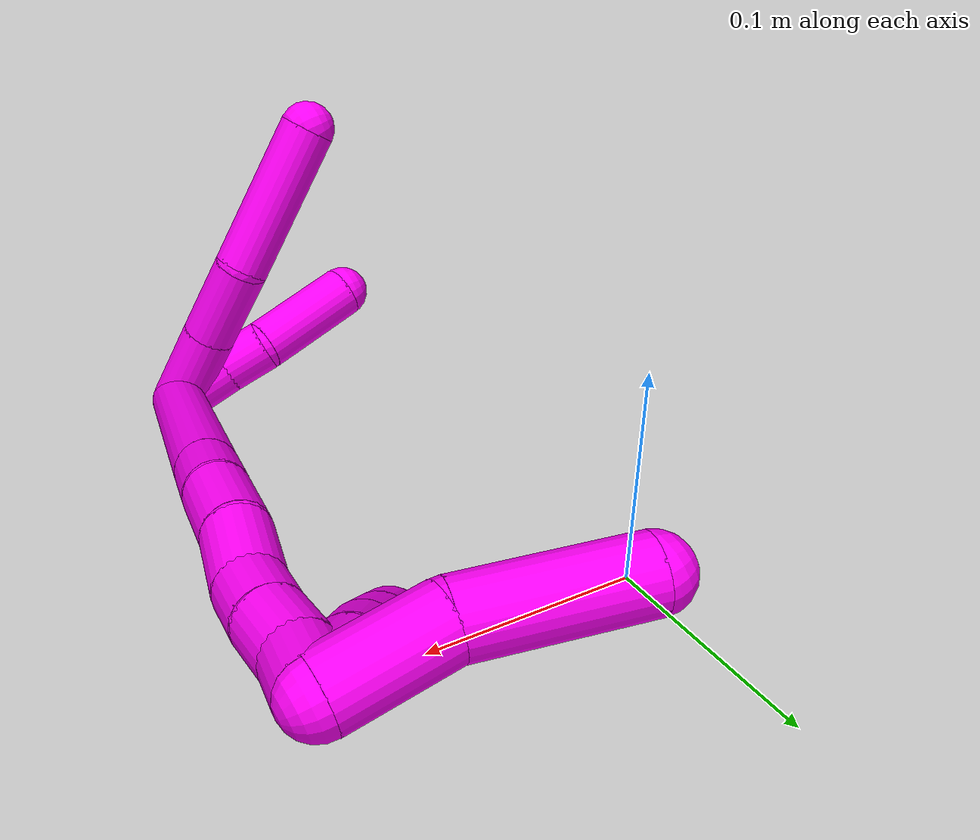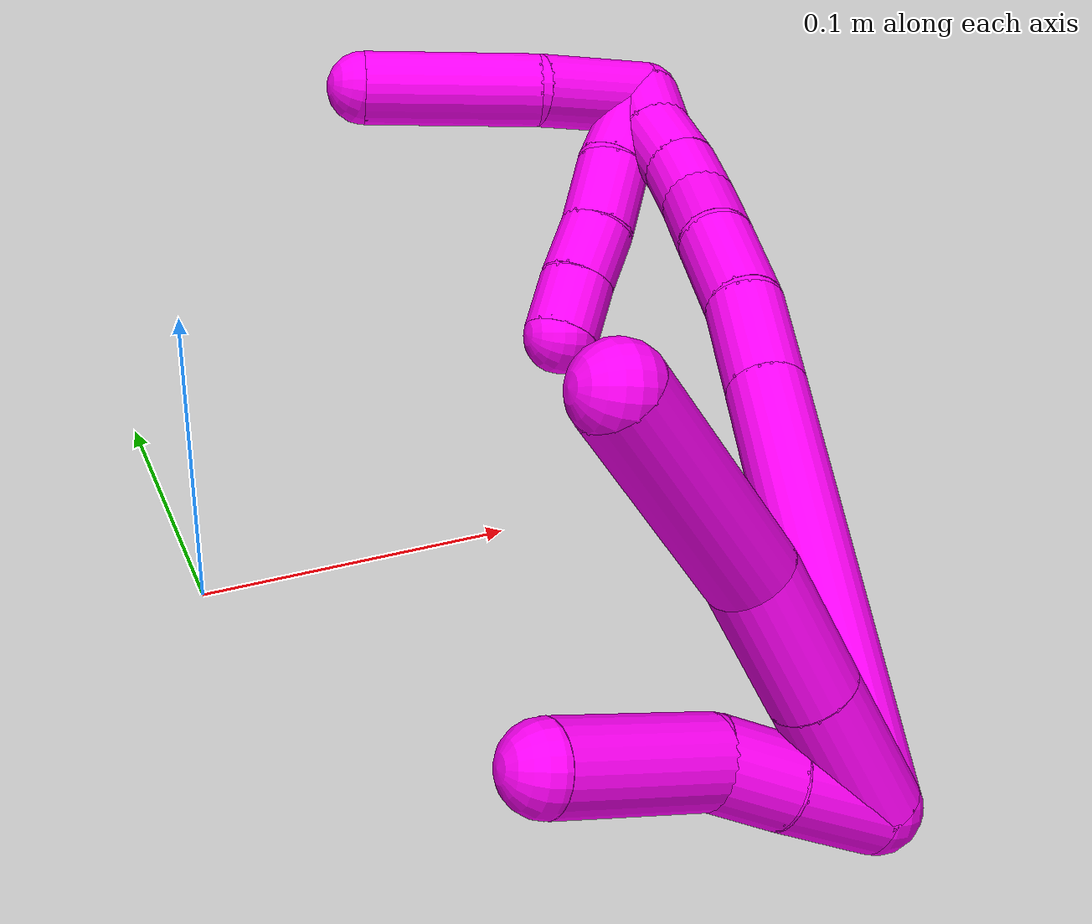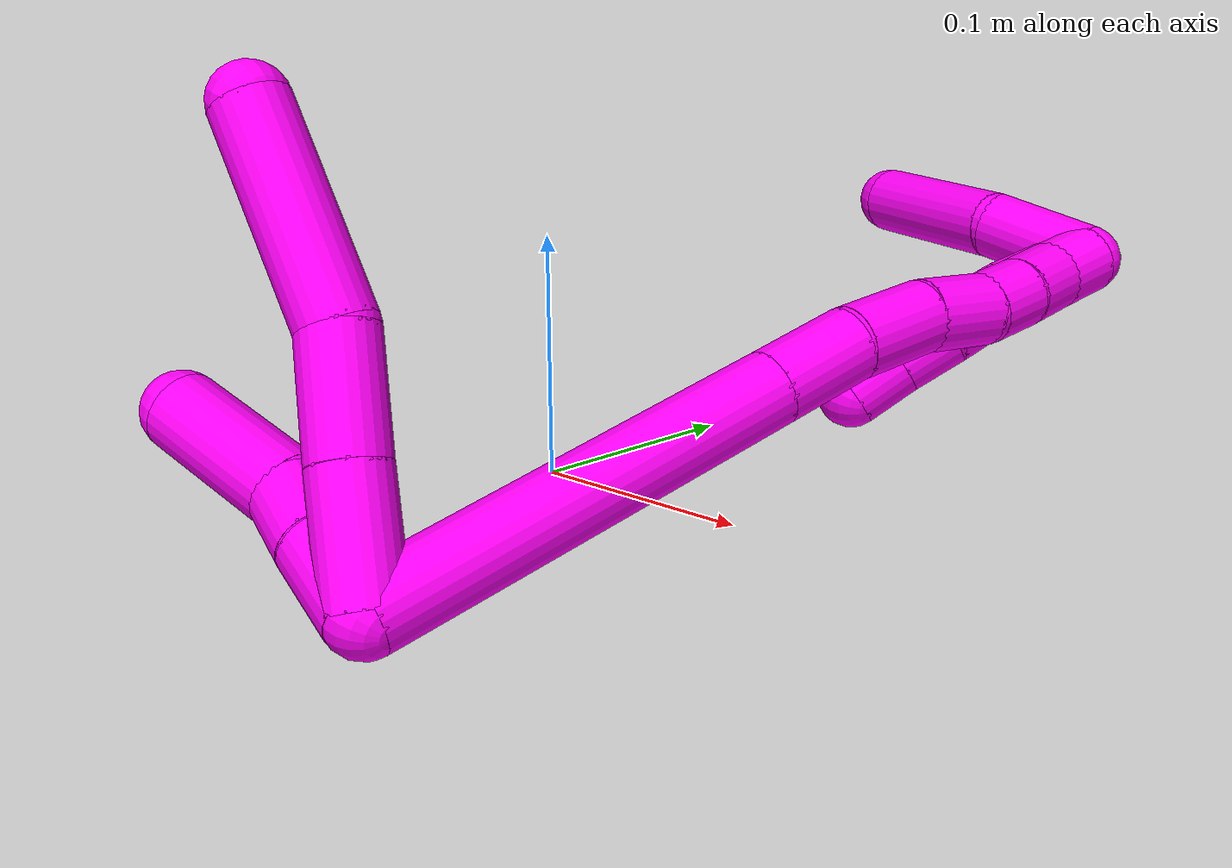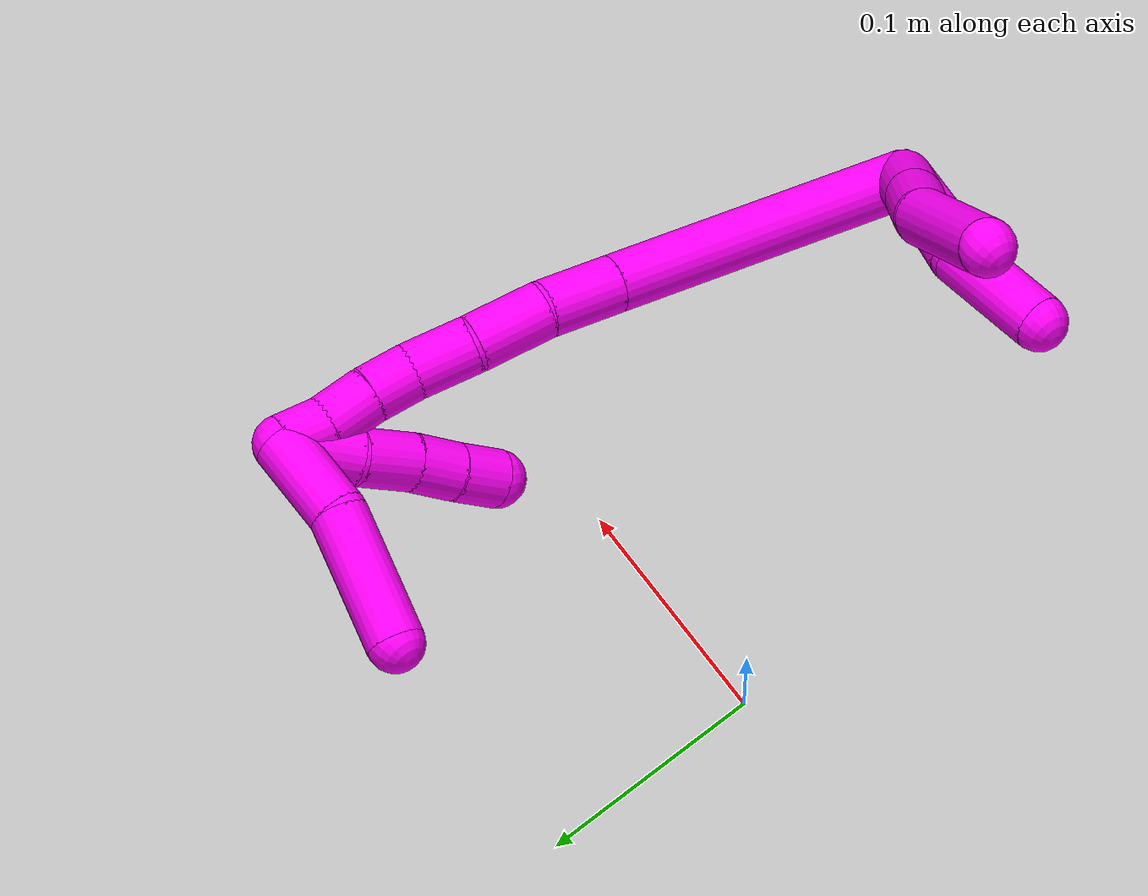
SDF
<sdf version="1.7">
 <world name="default">
  <model name="10">
   <static>0</static>
   <link name="10">
    <collision name="collision-cylinder-e_1_2_8">
     <pose>-0.009445 0.012657 -0.012486 -2.34942 -0.488343 1.0746</pose>
     <geometry><cylinder><radius>0.0125</radius><length>0.040265</length></cylinder></geometry>
     <surface>
      <friction><ode><mu>1.16</mu><mu2>1.16</mu2><slip1>0</slip1><slip2>0</slip2></ode></friction>
      <contact><ode><kp>1e+06</kp><kd>1</kd><max_vel>0</max_vel><min_depth>0.001</min_depth></ode></contact>
     </surface>
    </collision>
    <visual name="visual-cylinder-e_1_2_8">
     <pose>-0.009445 0.012657 -0.012486 -2.34942 -0.488343 1.0746</pose>
     <geometry><cylinder><radius>0.0125</radius><length>0.040265</length></cylinder></geometry>
     <material><ambient>1 0 0.964706 1</ambient></material>
    </visual>
    <collision name="collision-cylinder-e_2_8_9">
     <pose>-0.027726 0.037873 -0.036886 -2.32978 -0.471919 1.02015</pose>
     <geometry><cylinder><radius>0.0125</radius><length>0.03887</length></cylinder></geometry>
     <surface>
      <friction><ode><mu>1.16</mu><mu2>1.16</mu2><slip1>0</slip1><slip2>0</slip2></ode></friction>
      <contact><ode><kp>1e+06</kp><kd>1</kd><max_vel>0</max_vel><min_depth>0.001</min_depth></ode></contact>
     </surface>
    </collision>
    <visual name="visual-cylinder-e_2_8_9">
     <pose>-0.027726 0.037873 -0.036886 -2.32978 -0.471919 1.02015</pose>
     <geometry><cylinder><radius>0.0125</radius><length>0.03887</length></cylinder></geometry>
     <material><ambient>1 0 0.964706 1</ambient></material>
    </visual>
    <collision name="collision-cylinder-e_3_9_6">
     <pose>-0.056239 0.065109 -0.074349 -2.6202 -0.588809 1.69851</pose>
     <geometry><cylinder><radius>0.0125</radius><length>0.070865</length></cylinder></geometry>
     <surface>
      <friction><ode><mu>1.16</mu><mu2>1.16</mu2><slip1>0</slip1><slip2>0</slip2></ode></friction>
      <contact><ode><kp>1e+06</kp><kd>1</kd><max_vel>0</max_vel><min_depth>0.001</min_depth></ode></contact>
     </surface>
    </collision>
    <visual name="visual-cylinder-e_3_9_6">
     <pose>-0.056239 0.065109 -0.074349 -2.6202 -0.588809 1.69851</pose>
     <geometry><cylinder><radius>0.0125</radius><length>0.070865</length></cylinder></geometry>
     <material><ambient>1 0 0.964706 1</ambient></material>
    </visual>
    <collision name="collision-cylinder-e_1_2_10">
     <pose>-0.00149 0.002967 -0.013888 -2.9311 -0.10453 0.919611</pose>
     <geometry><cylinder><radius>0.0125</radius><length>0.028558</length></cylinder></geometry>
     <surface>
      <friction><ode><mu>1.16</mu><mu2>1.16</mu2><slip1>0</slip1><slip2>0</slip2></ode></friction>
      <contact><ode><kp>1e+06</kp><kd>1</kd><max_vel>0</max_vel><min_depth>0.001</min_depth></ode></contact>
     </surface>
    </collision>
    <visual name="visual-cylinder-e_1_2_10">
     <pose>-0.00149 0.002967 -0.013888 -2.9311 -0.10453 0.919611</pose>
     <geometry><cylinder><radius>0.0125</radius><length>0.028558</length></cylinder></geometry>
     <material><ambient>1 0 0.964706 1</ambient></material>
    </visual>
    <collision name="collision-cylinder-e_2_10_11">
     <pose>-0.003591 0.008745 -0.038283 -2.88022 -0.056177 0.421176</pose>
     <geometry><cylinder><radius>0.0125</radius><length>0.021789</length></cylinder></geometry>
     <surface>
      <friction><ode><mu>1.16</mu><mu2>1.16</mu2><slip1>0</slip1><slip2>0</slip2></ode></friction>
      <contact><ode><kp>1e+06</kp><kd>1</kd><max_vel>0</max_vel><min_depth>0.001</min_depth></ode></contact>
     </surface>
    </collision>
    <visual name="visual-cylinder-e_2_10_11">
     <pose>-0.003591 0.008745 -0.038283 -2.88022 -0.056177 0.421176</pose>
     <geometry><cylinder><radius>0.0125</radius><length>0.021789</length></cylinder></geometry>
     <material><ambient>1 0 0.964706 1</ambient></material>
    </visual>
    <collision name="collision-cylinder-e_3_11_5">
     <pose>-0.007858 0.010324 -0.073316 3.09142 -0.147739 -2.48779</pose>
     <geometry><cylinder><radius>0.0125</radius><length>0.049653</length></cylinder></geometry>
     <surface>
      <friction><ode><mu>1.16</mu><mu2>1.16</mu2><slip1>0</slip1><slip2>0</slip2></ode></friction>
      <contact><ode><kp>1e+06</kp><kd>1</kd><max_vel>0</max_vel><min_depth>0.001</min_depth></ode></contact>
     </surface>
    </collision>
    <visual name="visual-cylinder-e_3_11_5">
     <pose>-0.007858 0.010324 -0.073316 3.09142 -0.147739 -2.48779</pose>
     <geometry><cylinder><radius>0.0125</radius><length>0.049653</length></cylinder></geometry>
     <material><ambient>1 0 0.964706 1</ambient></material>
    </visual>
    <collision name="collision-cylinder-e_1_2_12">
     <pose>0.021939 0.067083 0.008103 -1.4506 0.313938 -0.27879</pose>
     <geometry><cylinder><radius>0.0125</radius><length>0.142086</length></cylinder></geometry>
     <surface>
      <friction><ode><mu>1.16</mu><mu2>1.16</mu2><slip1>0</slip1><slip2>0</slip2></ode></friction>
      <contact><ode><kp>1e+06</kp><kd>1</kd><max_vel>0</max_vel><min_depth>0.001</min_depth></ode></contact>
     </surface>
    </collision>
    <visual name="visual-cylinder-e_1_2_12">
     <pose>0.021939 0.067083 0.008103 -1.4506 0.313938 -0.27879</pose>
     <geometry><cylinder><radius>0.0125</radius><length>0.142086</length></cylinder></geometry>
     <material><ambient>1 0 0.964706 1</ambient></material>
    </visual>
    <collision name="collision-cylinder-e_2_12_13">
     <pose>0.049041 0.150002 0.018048 -1.45495 0.313238 -0.279374</pose>
     <geometry><cylinder><radius>0.0125</radius><length>0.033514</length></cylinder></geometry>
     <surface>
      <friction><ode><mu>1.16</mu><mu2>1.16</mu2><slip1>0</slip1><slip2>0</slip2></ode></friction>
      <contact><ode><kp>1e+06</kp><kd>1</kd><max_vel>0</max_vel><min_depth>0.001</min_depth></ode></contact>
     </surface>
    </collision>
    <visual name="visual-cylinder-e_2_12_13">
     <pose>0.049041 0.150002 0.018048 -1.45495 0.313238 -0.279374</pose>
     <geometry><cylinder><radius>0.0125</radius><length>0.033514</length></cylinder></geometry>
     <material><ambient>1 0 0.964706 1</ambient></material>
    </visual>
    <collision name="collision-cylinder-e_3_13_14">
     <pose>0.061948 0.180457 0.021518 -1.45993 0.484514 -0.435254</pose>
     <geometry><cylinder><radius>0.0125</radius><length>0.033249</length></cylinder></geometry>
     <surface>
      <friction><ode><mu>1.16</mu><mu2>1.16</mu2><slip1>0</slip1><slip2>0</slip2></ode></friction>
      <contact><ode><kp>1e+06</kp><kd>1</kd><max_vel>0</max_vel><min_depth>0.001</min_depth></ode></contact>
     </surface>
    </collision>
    <visual name="visual-cylinder-e_3_13_14">
     <pose>0.061948 0.180457 0.021518 -1.45993 0.484514 -0.435254</pose>
     <geometry><cylinder><radius>0.0125</radius><length>0.033249</length></cylinder></geometry>
     <material><ambient>1 0 0.964706 1</ambient></material>
    </visual>
    <collision name="collision-cylinder-e_4_14_15">
     <pose>0.077798 0.206111 0.0261 -1.30913 0.617259 -0.479913</pose>
     <geometry><cylinder><radius>0.0125</radius><length>0.028014</length></cylinder></geometry>
     <surface>
      <friction><ode><mu>1.16</mu><mu2>1.16</mu2><slip1>0</slip1><slip2>0</slip2></ode></friction>
      <contact><ode><kp>1e+06</kp><kd>1</kd><max_vel>0</max_vel><min_depth>0.001</min_depth></ode></contact>
     </surface>
    </collision>
    <visual name="visual-cylinder-e_4_14_15">
     <pose>0.077798 0.206111 0.0261 -1.30913 0.617259 -0.479913</pose>
     <geometry><cylinder><radius>0.0125</radius><length>0.028014</length></cylinder></geometry>
     <material><ambient>1 0 0.964706 1</ambient></material>
    </visual>
    <collision name="collision-cylinder-e_5_15_16">
     <pose>0.09083 0.226301 0.029548 -1.51702 0.492856 -0.467997</pose>
     <geometry><cylinder><radius>0.0125</radius><length>0.020817</length></cylinder></geometry>
     <surface>
      <friction><ode><mu>1.16</mu><mu2>1.16</mu2><slip1>0</slip1><slip2>0</slip2></ode></friction>
      <contact><ode><kp>1e+06</kp><kd>1</kd><max_vel>0</max_vel><min_depth>0.001</min_depth></ode></contact>
     </surface>
    </collision>
    <visual name="visual-cylinder-e_5_15_16">
     <pose>0.09083 0.226301 0.029548 -1.51702 0.492856 -0.467997</pose>
     <geometry><cylinder><radius>0.0125</radius><length>0.020817</length></cylinder></geometry>
     <material><ambient>1 0 0.964706 1</ambient></material>
    </visual>
    <collision name="collision-cylinder-e_6_16_17">
     <pose>0.101388 0.24507 0.029565 -1.6203 0.529537 -0.555093</pose>
     <geometry><cylinder><radius>0.0125</radius><length>0.022303</length></cylinder></geometry>
     <surface>
      <friction><ode><mu>1.16</mu><mu2>1.16</mu2><slip1>0</slip1><slip2>0</slip2></ode></friction>
      <contact><ode><kp>1e+06</kp><kd>1</kd><max_vel>0</max_vel><min_depth>0.001</min_depth></ode></contact>
     </surface>
    </collision>
    <visual name="visual-cylinder-e_6_16_17">
     <pose>0.101388 0.24507 0.029565 -1.6203 0.529537 -0.555093</pose>
     <geometry><cylinder><radius>0.0125</radius><length>0.022303</length></cylinder></geometry>
     <material><ambient>1 0 0.964706 1</ambient></material>
    </visual>
    <collision name="collision-cylinder-e_7_17_1">
     <pose>0.110974 0.263824 0.030074 -1.46341 0.406038 -0.365586</pose>
     <geometry><cylinder><radius>0.0125</radius><length>0.020016</length></cylinder></geometry>
     <surface>
      <friction><ode><mu>1.16</mu><mu2>1.16</mu2><slip1>0</slip1><slip2>0</slip2></ode></friction>
      <contact><ode><kp>1e+06</kp><kd>1</kd><max_vel>0</max_vel><min_depth>0.001</min_depth></ode></contact>
     </surface>
    </collision>
    <visual name="visual-cylinder-e_7_17_1">
     <pose>0.110974 0.263824 0.030074 -1.46341 0.406038 -0.365586</pose>
     <geometry><cylinder><radius>0.0125</radius><length>0.020016</length></cylinder></geometry>
     <material><ambient>1 0 0.964706 1</ambient></material>
    </visual>
    <collision name="collision-cylinder-e_1_1_18">
     <pose>0.114801 0.258561 0.023013 2.08024 -0.007619 -0.012983</pose>
     <geometry><cylinder><radius>0.0125</radius><length>0.033</length></cylinder></geometry>
     <surface>
      <friction><ode><mu>1.16</mu><mu2>1.16</mu2><slip1>0</slip1><slip2>0</slip2></ode></friction>
      <contact><ode><kp>1e+06</kp><kd>1</kd><max_vel>0</max_vel><min_depth>0.001</min_depth></ode></contact>
     </surface>
    </collision>
    <visual name="visual-cylinder-e_1_1_18">
     <pose>0.114801 0.258561 0.023013 2.08024 -0.007619 -0.012983</pose>
     <geometry><cylinder><radius>0.0125</radius><length>0.033</length></cylinder></geometry>
     <material><ambient>1 0 0.964706 1</ambient></material>
    </visual>
    <collision name="collision-cylinder-e_2_18_19">
     <pose>0.115403 0.232274 0.010599 1.92299 0.057394 0.082216</pose>
     <geometry><cylinder><radius>0.0125</radius><length>0.025361</length></cylinder></geometry>
     <surface>
      <friction><ode><mu>1.16</mu><mu2>1.16</mu2><slip1>0</slip1><slip2>0</slip2></ode></friction>
      <contact><ode><kp>1e+06</kp><kd>1</kd><max_vel>0</max_vel><min_depth>0.001</min_depth></ode></contact>
     </surface>
    </collision>
    <visual name="visual-cylinder-e_2_18_19">
     <pose>0.115403 0.232274 0.010599 1.92299 0.057394 0.082216</pose>
     <geometry><cylinder><radius>0.0125</radius><length>0.025361</length></cylinder></geometry>
     <material><ambient>1 0 0.964706 1</ambient></material>
    </visual>
    <collision name="collision-cylinder-e_3_19_20">
     <pose>0.117358 0.211017 0.001869 2.00633 0.118151 0.184982</pose>
     <geometry><cylinder><radius>0.0125</radius><length>0.020825</length></cylinder></geometry>
     <surface>
      <friction><ode><mu>1.16</mu><mu2>1.16</mu2><slip1>0</slip1><slip2>0</slip2></ode></friction>
      <contact><ode><kp>1e+06</kp><kd>1</kd><max_vel>0</max_vel><min_depth>0.001</min_depth></ode></contact>
     </surface>
    </collision>
    <visual name="visual-cylinder-e_3_19_20">
     <pose>0.117358 0.211017 0.001869 2.00633 0.118151 0.184982</pose>
     <geometry><cylinder><radius>0.0125</radius><length>0.020825</length></cylinder></geometry>
     <material><ambient>1 0 0.964706 1</ambient></material>
    </visual>
    <collision name="collision-cylinder-e_4_20_4">
     <pose>0.119845 0.191994 -0.006185 1.9363 0.121385 0.176185</pose>
     <geometry><cylinder><radius>0.0125</radius><length>0.020814</length></cylinder></geometry>
     <surface>
      <friction><ode><mu>1.16</mu><mu2>1.16</mu2><slip1>0</slip1><slip2>0</slip2></ode></friction>
      <contact><ode><kp>1e+06</kp><kd>1</kd><max_vel>0</max_vel><min_depth>0.001</min_depth></ode></contact>
     </surface>
    </collision>
    <visual name="visual-cylinder-e_4_20_4">
     <pose>0.119845 0.191994 -0.006185 1.9363 0.121385 0.176185</pose>
     <geometry><cylinder><radius>0.0125</radius><length>0.020814</length></cylinder></geometry>
     <material><ambient>1 0 0.964706 1</ambient></material>
    </visual>
    <collision name="collision-cylinder-e_1_1_21">
     <pose>0.11544 0.272398 0.010963 3.11336 0.025491 1.46887</pose>
     <geometry><cylinder><radius>0.0125</radius><length>0.04022</length></cylinder></geometry>
     <surface>
      <friction><ode><mu>1.16</mu><mu2>1.16</mu2><slip1>0</slip1><slip2>0</slip2></ode></friction>
      <contact><ode><kp>1e+06</kp><kd>1</kd><max_vel>0</max_vel><min_depth>0.001</min_depth></ode></contact>
     </surface>
    </collision>
    <visual name="visual-cylinder-e_1_1_21">
     <pose>0.11544 0.272398 0.010963 3.11336 0.025491 1.46887</pose>
     <geometry><cylinder><radius>0.0125</radius><length>0.04022</length></cylinder></geometry>
     <material><ambient>1 0 0.964706 1</ambient></material>
    </visual>
    <collision name="collision-cylinder-e_2_21_3">
     <pose>0.124558 0.273645 -0.037699 -3.07818 0.292044 -2.71677</pose>
     <geometry><cylinder><radius>0.0125</radius><length>0.05978</length></cylinder></geometry>
     <surface>
      <friction><ode><mu>1.16</mu><mu2>1.16</mu2><slip1>0</slip1><slip2>0</slip2></ode></friction>
      <contact><ode><kp>1e+06</kp><kd>1</kd><max_vel>0</max_vel><min_depth>0.001</min_depth></ode></contact>
     </surface>
    </collision>
    <visual name="visual-cylinder-e_2_21_3">
     <pose>0.124558 0.273645 -0.037699 -3.07818 0.292044 -2.71677</pose>
     <geometry><cylinder><radius>0.0125</radius><length>0.05978</length></cylinder></geometry>
     <material><ambient>1 0 0.964706 1</ambient></material>
    </visual>
    <collision name="collision-sphere-3">
     <pose>0.133163 0.275459 -0.066265 0 -0 0</pose>
     <geometry><sphere><radius>0.0125</radius></sphere></geometry>
     <surface>
      <friction><ode><mu>1.16</mu><mu2>1.16</mu2><slip1>0</slip1><slip2>0</slip2></ode></friction>
      <contact><ode><kp>1e+06</kp><kd>1</kd><max_vel>0</max_vel><min_depth>0.001</min_depth></ode></contact>
     </surface>
    </collision>
    <visual name="visual-sphere-3">
     <pose>0.133163 0.275459 -0.066265 0 -0 0</pose>
     <geometry><sphere><radius>0.0125</radius></sphere></geometry>
     <material><ambient>1 0 0.964706 1</ambient></material>
    </visual>
    <collision name="collision-sphere-21">
     <pose>0.115952 0.271831 -0.009132 0 -0 0</pose>
     <geometry><sphere><radius>0.0125</radius></sphere></geometry>
     <surface>
      <friction><ode><mu>1.16</mu><mu2>1.16</mu2><slip1>0</slip1><slip2>0</slip2></ode></friction>
      <contact><ode><kp>1e+06</kp><kd>1</kd><max_vel>0</max_vel><min_depth>0.001</min_depth></ode></contact>
     </surface>
    </collision>
    <visual name="visual-sphere-21">
     <pose>0.115952 0.271831 -0.009132 0 -0 0</pose>
     <geometry><sphere><radius>0.0125</radius></sphere></geometry>
     <material><ambient>1 0 0.964706 1</ambient></material>
    </visual>
    <collision name="collision-sphere-4">
     <pose>0.121105 0.182346 -0.009877 0 -0 0</pose>
     <geometry><sphere><radius>0.0125</radius></sphere></geometry>
     <surface>
      <friction><ode><mu>1.16</mu><mu2>1.16</mu2><slip1>0</slip1><slip2>0</slip2></ode></friction>
      <contact><ode><kp>1e+06</kp><kd>1</kd><max_vel>0</max_vel><min_depth>0.001</min_depth></ode></contact>
     </surface>
    </collision>
    <visual name="visual-sphere-4">
     <pose>0.121105 0.182346 -0.009877 0 -0 0</pose>
     <geometry><sphere><radius>0.0125</radius></sphere></geometry>
     <material><ambient>1 0 0.964706 1</ambient></material>
    </visual>
    <collision name="collision-sphere-20">
     <pose>0.118585 0.201642 -0.002493 0 -0 0</pose>
     <geometry><sphere><radius>0.0125</radius></sphere></geometry>
     <surface>
      <friction><ode><mu>1.16</mu><mu2>1.16</mu2><slip1>0</slip1><slip2>0</slip2></ode></friction>
      <contact><ode><kp>1e+06</kp><kd>1</kd><max_vel>0</max_vel><min_depth>0.001</min_depth></ode></contact>
     </surface>
    </collision>
    <visual name="visual-sphere-20">
     <pose>0.118585 0.201642 -0.002493 0 -0 0</pose>
     <geometry><sphere><radius>0.0125</radius></sphere></geometry>
     <material><ambient>1 0 0.964706 1</ambient></material>
    </visual>
    <collision name="collision-sphere-11">
     <pose>-0.004203 0.011556 -0.048791 0 -0 0</pose>
     <geometry><sphere><radius>0.0125</radius></sphere></geometry>
     <surface>
      <friction><ode><mu>1.16</mu><mu2>1.16</mu2><slip1>0</slip1><slip2>0</slip2></ode></friction>
      <contact><ode><kp>1e+06</kp><kd>1</kd><max_vel>0</max_vel><min_depth>0.001</min_depth></ode></contact>
     </surface>
    </collision>
    <visual name="visual-sphere-11">
     <pose>-0.004203 0.011556 -0.048791 0 -0 0</pose>
     <geometry><sphere><radius>0.0125</radius></sphere></geometry>
     <material><ambient>1 0 0.964706 1</ambient></material>
    </visual>
    <collision name="collision-sphere-10">
     <pose>-0.00298 0.005934 -0.027775 0 -0 0</pose>
     <geometry><sphere><radius>0.0125</radius></sphere></geometry>
     <surface>
      <friction><ode><mu>1.16</mu><mu2>1.16</mu2><slip1>0</slip1><slip2>0</slip2></ode></friction>
      <contact><ode><kp>1e+06</kp><kd>1</kd><max_vel>0</max_vel><min_depth>0.001</min_depth></ode></contact>
     </surface>
    </collision>
    <visual name="visual-sphere-10">
     <pose>-0.00298 0.005934 -0.027775 0 -0 0</pose>
     <geometry><sphere><radius>0.0125</radius></sphere></geometry>
     <material><ambient>1 0 0.964706 1</ambient></material>
    </visual>
    <collision name="collision-sphere-6">
     <pose>-0.075917 0.079786 -0.0999 0 -0 0</pose>
     <geometry><sphere><radius>0.0125</radius></sphere></geometry>
     <surface>
      <friction><ode><mu>1.16</mu><mu2>1.16</mu2><slip1>0</slip1><slip2>0</slip2></ode></friction>
      <contact><ode><kp>1e+06</kp><kd>1</kd><max_vel>0</max_vel><min_depth>0.001</min_depth></ode></contact>
     </surface>
    </collision>
    <visual name="visual-sphere-6">
     <pose>-0.075917 0.079786 -0.0999 0 -0 0</pose>
     <geometry><sphere><radius>0.0125</radius></sphere></geometry>
     <material><ambient>1 0 0.964706 1</ambient></material>
    </visual>
    <collision name="collision-sphere-9">
     <pose>-0.036561 0.050432 -0.048799 0 -0 0</pose>
     <geometry><sphere><radius>0.0125</radius></sphere></geometry>
     <surface>
      <friction><ode><mu>1.16</mu><mu2>1.16</mu2><slip1>0</slip1><slip2>0</slip2></ode></friction>
      <contact><ode><kp>1e+06</kp><kd>1</kd><max_vel>0</max_vel><min_depth>0.001</min_depth></ode></contact>
     </surface>
    </collision>
    <visual name="visual-sphere-9">
     <pose>-0.036561 0.050432 -0.048799 0 -0 0</pose>
     <geometry><sphere><radius>0.0125</radius></sphere></geometry>
     <material><ambient>1 0 0.964706 1</ambient></material>
    </visual>
    <collision name="collision-sphere-2">
     <geometry><sphere><radius>0.0125</radius></sphere></geometry>
     <surface>
      <friction><ode><mu>1.16</mu><mu2>1.16</mu2><slip1>0</slip1><slip2>0</slip2></ode></friction>
      <contact><ode><kp>1e+06</kp><kd>1</kd><max_vel>0</max_vel><min_depth>0.001</min_depth></ode></contact>
     </surface>
    </collision>
    <visual name="visual-sphere-2">
     <geometry><sphere><radius>0.0125</radius></sphere></geometry>
     <material><ambient>1 0 0.964706 1</ambient></material>
    </visual>
    <collision name="collision-sphere-19">
     <pose>0.11613 0.220392 0.006232 0 -0 0</pose>
     <geometry><sphere><radius>0.0125</radius></sphere></geometry>
     <surface>
      <friction><ode><mu>1.16</mu><mu2>1.16</mu2><slip1>0</slip1><slip2>0</slip2></ode></friction>
      <contact><ode><kp>1e+06</kp><kd>1</kd><max_vel>0</max_vel><min_depth>0.001</min_depth></ode></contact>
     </surface>
    </collision>
    <visual name="visual-sphere-19">
     <pose>0.11613 0.220392 0.006232 0 -0 0</pose>
     <geometry><sphere><radius>0.0125</radius></sphere></geometry>
     <material><ambient>1 0 0.964706 1</ambient></material>
    </visual>
    <collision name="collision-sphere-8">
     <pose>-0.018891 0.025313 -0.024973 0 -0 0</pose>
     <geometry><sphere><radius>0.0125</radius></sphere></geometry>
     <surface>
      <friction><ode><mu>1.16</mu><mu2>1.16</mu2><slip1>0</slip1><slip2>0</slip2></ode></friction>
      <contact><ode><kp>1e+06</kp><kd>1</kd><max_vel>0</max_vel><min_depth>0.001</min_depth></ode></contact>
     </surface>
    </collision>
    <visual name="visual-sphere-8">
     <pose>-0.018891 0.025313 -0.024973 0 -0 0</pose>
     <geometry><sphere><radius>0.0125</radius></sphere></geometry>
     <material><ambient>1 0 0.964706 1</ambient></material>
    </visual>
    <collision name="collision-sphere-5">
     <pose>-0.011512 0.009093 -0.097841 0 -0 0</pose>
     <geometry><sphere><radius>0.0125</radius></sphere></geometry>
     <surface>
      <friction><ode><mu>1.16</mu><mu2>1.16</mu2><slip1>0</slip1><slip2>0</slip2></ode></friction>
      <contact><ode><kp>1e+06</kp><kd>1</kd><max_vel>0</max_vel><min_depth>0.001</min_depth></ode></contact>
     </surface>
    </collision>
    <visual name="visual-sphere-5">
     <pose>-0.011512 0.009093 -0.097841 0 -0 0</pose>
     <geometry><sphere><radius>0.0125</radius></sphere></geometry>
     <material><ambient>1 0 0.964706 1</ambient></material>
    </visual>
    <collision name="collision-sphere-12">
     <pose>0.043877 0.134167 0.016205 0 -0 0</pose>
     <geometry><sphere><radius>0.0125</radius></sphere></geometry>
     <surface>
      <friction><ode><mu>1.16</mu><mu2>1.16</mu2><slip1>0</slip1><slip2>0</slip2></ode></friction>
      <contact><ode><kp>1e+06</kp><kd>1</kd><max_vel>0</max_vel><min_depth>0.001</min_depth></ode></contact>
     </surface>
    </collision>
    <visual name="visual-sphere-12">
     <pose>0.043877 0.134167 0.016205 0 -0 0</pose>
     <geometry><sphere><radius>0.0125</radius></sphere></geometry>
     <material><ambient>1 0 0.964706 1</ambient></material>
    </visual>
    <collision name="collision-sphere-13">
     <pose>0.054204 0.165836 0.01989 0 -0 0</pose>
     <geometry><sphere><radius>0.0125</radius></sphere></geometry>
     <surface>
      <friction><ode><mu>1.16</mu><mu2>1.16</mu2><slip1>0</slip1><slip2>0</slip2></ode></friction>
      <contact><ode><kp>1e+06</kp><kd>1</kd><max_vel>0</max_vel><min_depth>0.001</min_depth></ode></contact>
     </surface>
    </collision>
    <visual name="visual-sphere-13">
     <pose>0.054204 0.165836 0.01989 0 -0 0</pose>
     <geometry><sphere><radius>0.0125</radius></sphere></geometry>
     <material><ambient>1 0 0.964706 1</ambient></material>
    </visual>
    <collision name="collision-sphere-14">
     <pose>0.069691 0.195078 0.023145 0 -0 0</pose>
     <geometry><sphere><radius>0.0125</radius></sphere></geometry>
     <surface>
      <friction><ode><mu>1.16</mu><mu2>1.16</mu2><slip1>0</slip1><slip2>0</slip2></ode></friction>
      <contact><ode><kp>1e+06</kp><kd>1</kd><max_vel>0</max_vel><min_depth>0.001</min_depth></ode></contact>
     </surface>
    </collision>
    <visual name="visual-sphere-14">
     <pose>0.069691 0.195078 0.023145 0 -0 0</pose>
     <geometry><sphere><radius>0.0125</radius></sphere></geometry>
     <material><ambient>1 0 0.964706 1</ambient></material>
    </visual>
    <collision name="collision-sphere-15">
     <pose>0.085905 0.217145 0.029055 0 -0 0</pose>
     <geometry><sphere><radius>0.0125</radius></sphere></geometry>
     <surface>
      <friction><ode><mu>1.16</mu><mu2>1.16</mu2><slip1>0</slip1><slip2>0</slip2></ode></friction>
      <contact><ode><kp>1e+06</kp><kd>1</kd><max_vel>0</max_vel><min_depth>0.001</min_depth></ode></contact>
     </surface>
    </collision>
    <visual name="visual-sphere-15">
     <pose>0.085905 0.217145 0.029055 0 -0 0</pose>
     <geometry><sphere><radius>0.0125</radius></sphere></geometry>
     <material><ambient>1 0 0.964706 1</ambient></material>
    </visual>
    <collision name="collision-sphere-16">
     <pose>0.095755 0.235458 0.030041 0 -0 0</pose>
     <geometry><sphere><radius>0.0125</radius></sphere></geometry>
     <surface>
      <friction><ode><mu>1.16</mu><mu2>1.16</mu2><slip1>0</slip1><slip2>0</slip2></ode></friction>
      <contact><ode><kp>1e+06</kp><kd>1</kd><max_vel>0</max_vel><min_depth>0.001</min_depth></ode></contact>
     </surface>
    </collision>
    <visual name="visual-sphere-16">
     <pose>0.095755 0.235458 0.030041 0 -0 0</pose>
     <geometry><sphere><radius>0.0125</radius></sphere></geometry>
     <material><ambient>1 0 0.964706 1</ambient></material>
    </visual>
    <collision name="collision-sphere-17">
     <pose>0.107021 0.254683 0.029088 0 -0 0</pose>
     <geometry><sphere><radius>0.0125</radius></sphere></geometry>
     <surface>
      <friction><ode><mu>1.16</mu><mu2>1.16</mu2><slip1>0</slip1><slip2>0</slip2></ode></friction>
      <contact><ode><kp>1e+06</kp><kd>1</kd><max_vel>0</max_vel><min_depth>0.001</min_depth></ode></contact>
     </surface>
    </collision>
    <visual name="visual-sphere-17">
     <pose>0.107021 0.254683 0.029088 0 -0 0</pose>
     <geometry><sphere><radius>0.0125</radius></sphere></geometry>
     <material><ambient>1 0 0.964706 1</ambient></material>
    </visual>
    <collision name="collision-sphere-1">
     <pose>0.114927 0.272966 0.031059 0 -0 0</pose>
     <geometry><sphere><radius>0.0125</radius></sphere></geometry>
     <surface>
      <friction><ode><mu>1.16</mu><mu2>1.16</mu2><slip1>0</slip1><slip2>0</slip2></ode></friction>
      <contact><ode><kp>1e+06</kp><kd>1</kd><max_vel>0</max_vel><min_depth>0.001</min_depth></ode></contact>
     </surface>
    </collision>
    <visual name="visual-sphere-1">
     <pose>0.114927 0.272966 0.031059 0 -0 0</pose>
     <geometry><sphere><radius>0.0125</radius></sphere></geometry>
     <material><ambient>1 0 0.964706 1</ambient></material>
    </visual>
    <collision name="collision-sphere-18">
     <pose>0.114676 0.244157 0.014966 0 -0 0</pose>
     <geometry><sphere><radius>0.0125</radius></sphere></geometry>
     <surface>
      <friction><ode><mu>1.16</mu><mu2>1.16</mu2><slip1>0</slip1><slip2>0</slip2></ode></friction>
      <contact><ode><kp>1e+06</kp><kd>1</kd><max_vel>0</max_vel><min_depth>0.001</min_depth></ode></contact>
     </surface>
    </collision>
    <visual name="visual-sphere-18">
     <pose>0.114676 0.244157 0.014966 0 -0 0</pose>
     <geometry><sphere><radius>0.0125</radius></sphere></geometry>
     <material><ambient>1 0 0.964706 1</ambient></material>
    </visual>
    <inertial>
     <pose>0.044215 0.132403 -0.010495 0 -0 0</pose>
     <mass>0.75</mass>
     <inertia><ixx>0.000193</ixx><ixy>0</ixy><ixz>0</ixz><iyy>7e-05</iyy><iyz>0</iyz><izz>-0.000347</izz></inertia>
    </inertial>
   </link>
   <pose>0.133422 -0.188741 0.03137 1.97739 0.861273 1.87273</pose>
  </model>
 </world>
</sdf>
